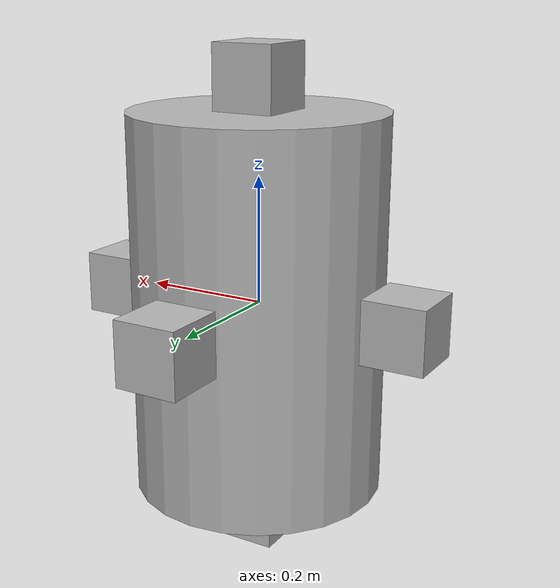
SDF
<sdf version="1.4">
<model name="payload">
  <link name="body">
    <visual name="payload_vis">
      <geometry>
        <cylinder>
        	<length>0.6</length>
        	<radius>0.2</radius>
        </cylinder>
      </geometry>
    </visual>
    <collision name="payload_col">
      <geometry>
      	<cylinder>
        	<length>0.6</length>
        	<radius>0.2</radius>
        </cylinder>
      </geometry>
    </collision>
    <inertial>
      <mass>10</mass>
      <inertia>
      	 <ixx>40</ixx>
      	 <ixy>5</ixy>
      	 <ixz>5</ixz>
      	 <iyy>40</iyy>
      	 <iyz>0.0</iyz>
      	 <izz>20</izz>
      </inertia>
    </inertial>
    <gravity>0</gravity>
    </link>
    <plugin filename="libmultiForcePlugin.so" name="forcePlugin" />
<link name="robot1"><pose> 0 0 .35 0 0 0</pose><visual name="robot1-vis"><geometry><box><size>0.100000 0.100000 0.100000</size></box></geometry></visual><collision name="robot1-col"><geometry><box><size>0.100000 0.100000 0.100000</size></box></geometry></collision><gravity>0</gravity></link><joint name="robot1-joint" type="fixed"><parent>body</parent><child>robot1</child></joint><link name="robot2"><pose> .25 0 0 0 0 0</pose><visual name="robot2-vis"><geometry><box><size>0.100000 0.100000 0.100000</size></box></geometry></visual><collision name="robot2-col"><geometry><box><size>0.100000 0.100000 0.100000</size></box></geometry></collision><gravity>0</gravity></link><joint name="robot2-joint" type="fixed"><parent>body</parent><child>robot2</child></joint><link name="robot3"><pose> -.25 0 0 0 0 0</pose><visual name="robot3-vis"><geometry><box><size>0.100000 0.100000 0.100000</size></box></geometry></visual><collision name="robot3-col"><geometry><box><size>0.100000 0.100000 0.100000</size></box></geometry></collision><gravity>0</gravity></link><joint name="robot3-joint" type="fixed"><parent>body</parent><child>robot3</child></joint><link name="robot4"><pose> 0 .25 0 0 0 0</pose><visual name="robot4-vis"><geometry><box><size>0.100000 0.100000 0.100000</size></box></geometry></visual><collision name="robot4-col"><geometry><box><size>0.100000 0.100000 0.100000</size></box></geometry></collision><gravity>0</gravity></link><joint name="robot4-joint" type="fixed"><parent>body</parent><child>robot4</child></joint><link name="robot5"><pose> 0 -.25 0 0 0 0</pose><visual name="robot5-vis"><geometry><box><size>0.100000 0.100000 0.100000</size></box></geometry></visual><collision name="robot5-col"><geometry><box><size>0.100000 0.100000 0.100000</size></box></geometry></collision><gravity>0</gravity></link><joint name="robot5-joint" type="fixed"><parent>body</parent><child>robot5</child></joint><link name="robot6"><pose> 0 0 -.35 0 0 0</pose><visual name="robot6-vis"><geometry><box><size>0.100000 0.100000 0.100000</size></box></geometry></visual><collision name="robot6-col"><geometry><box><size>0.100000 0.100000 0.100000</size></box></geometry></collision><gravity>0</gravity></link><joint name="robot6-joint" type="fixed"><parent>body</parent><child>robot6</child></joint></model>
</sdf>
